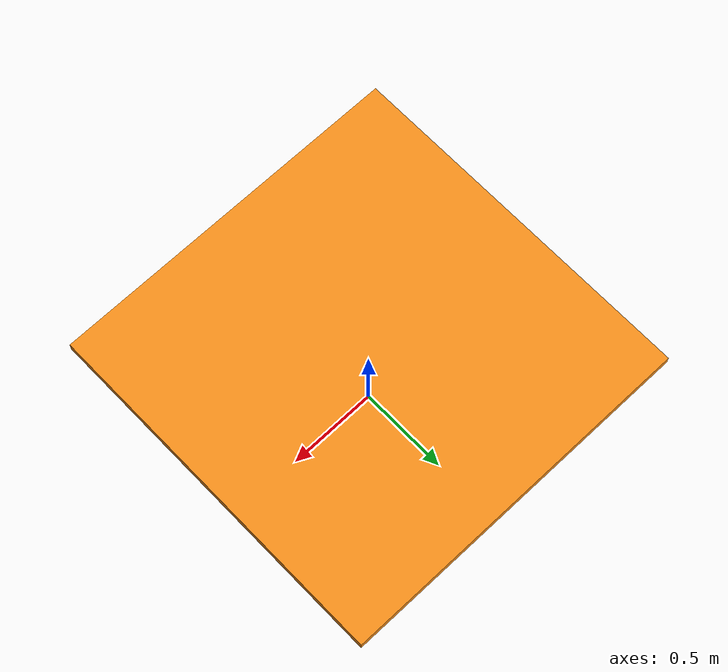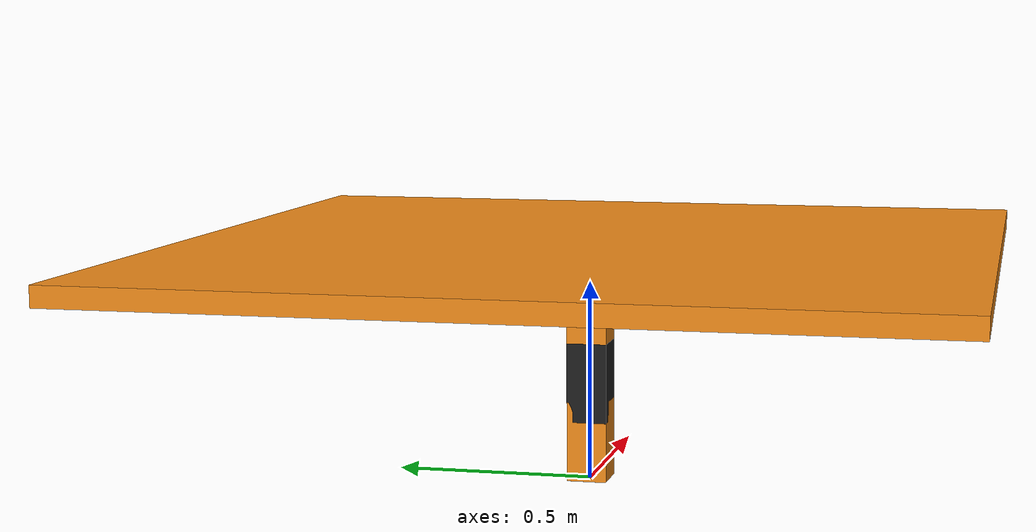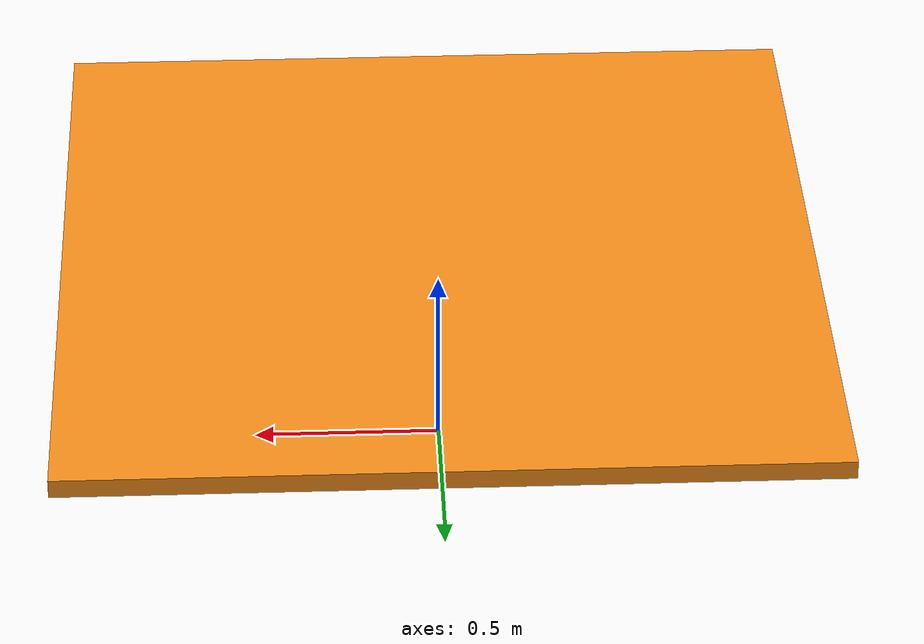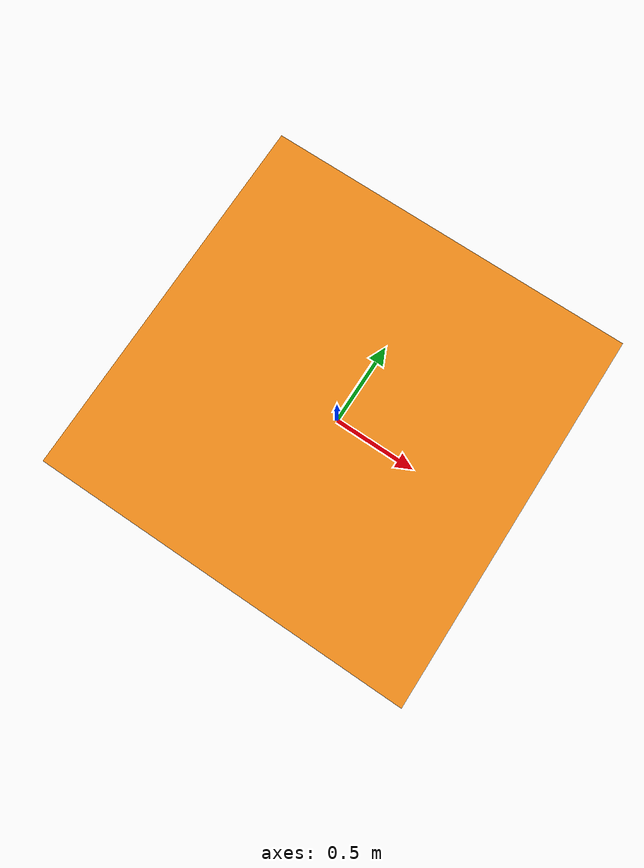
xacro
<?xml version="1.0"?>
<!-- Revolute-Revolute Manipulator -->
<robot name="floor" xmlns:xacro="http://www.ros.org/wiki/xacro">

  <!-- Constants for robot dimensions -->
  <xacro:property name="PI" value="3.1415926535897931"/>
  <xacro:property name="mass" value="1" /> <!-- arbitrary value for mass -->
  <xacro:property name="width" value="0.1" /> <!-- Square dimensions (widthxwidth) of beams -->
  <xacro:property name="height1" value="0.2" /> <!-- Link 1 0.5-->
  <xacro:property name="height2" value="0.2" /> <!-- Link 2 0.3-->
  <xacro:property name="height3" value="0.2" /> <!-- Link 3 0.3-->
  <xacro:property name="height4" value="0.05" /> <!-- Link 4 -->
  <xacro:property name="width4" value="2" /> <!-- Link 4 -->
  <xacro:property name="limit_joint" value="0.52" /> <!-- Limit joint-->
  <xacro:property name="camera_link" value="0.05" /> <!-- Size of square 'camera' box -->
  <xacro:property name="axel_offset" value="0.05" /> <!-- Space btw top of beam and the each joint -->

  <!-- Import all Gazebo-customization elements, including Gazebo colors -->
  <xacro:include filename="$(find floor_description)/urdf/floor.gazebo" />
  <!-- Import Rviz colors -->
  <xacro:include filename="$(find floor_description)/urdf/floor_materials.xacro" />

  <!-- Used for fixing robot to Gazebo 'base_link' -->
  <link name="world"/>

  <joint name="fixed" type="fixed">
    <parent link="world"/>
    <child link="link1"/>
  </joint>

  <!-- Base Link -->
  <link name="link1">
    <collision>
      <origin xyz="0 0 ${height1/2}" rpy="0 0 0"/>
      <geometry>
	      <box size="${width} ${width} ${height1}"/>
      </geometry>
    </collision>

    <visual>
      <origin xyz="0 0 ${height1/2}" rpy="0 0 0"/>
      <geometry>
	      <box size="${width} ${width} ${height1}"/>
      </geometry>
      <material name="orange"/>
    </visual>

    <inertial>
      <origin xyz="0 0 ${height1/2}" rpy="0 0 0"/>
      <mass value="${mass}"/>
      <inertia
        ixx="${mass / 12.0 * (width*width + height1*height1)}" ixy="0.0" ixz="0.0"
        iyy="${mass / 12.0 * (height1*height1 + width*width)}" iyz="0.0"
        izz="${mass / 12.0 * (width*width + width*width)}"/>
    </inertial>
  </link>

  <joint name="joint1" type="revolute">
    <parent link="link1"/>
    <child link="link2"/>
    <origin xyz="0 0 ${height1}" rpy="0 0 0"/>
    <limit effort="1000" lower="-${limit_joint}" upper="${limit_joint}" velocity="1.5" />
    <axis xyz="0 1 0"/>
    <dynamics damping="0.7"/>
  </joint>

  <!-- Middle Link -->
  <link name="link2">
    <collision>
      <origin xyz="0 0 ${height2/2 - axel_offset}" rpy="0 0 0"/>
      <geometry>
	      <box size="${width} ${width} ${height2}"/>
      </geometry>
    </collision>

    <visual>
      <origin xyz="0 0 ${height2/2 - axel_offset}" rpy="0 0 0"/>
      <geometry>
      	<box size="${width} ${width} ${height2}"/>
      </geometry>
      <material name="black"/>
    </visual>

    <inertial>
      <origin xyz="0 0 ${height2/2 - axel_offset}" rpy="0 0 0"/>
      <mass value="${mass}"/>
      <inertia
        ixx="${mass / 12.0 * (width*width + height2*height2)}" ixy="0.0" ixz="0.0"
        iyy="${mass / 12.0 * (height2*height2 + width*width)}" iyz="0.0"
        izz="${mass / 12.0 * (width*width + width*width)}"/>
    </inertial>
  </link>

  <joint name="joint2" type="revolute">
    <parent link="link2"/>
    <child link="link3"/>
    <origin xyz="0 0 ${height2}" rpy="0 0 0"/>
    <limit effort="1000" lower="-${limit_joint}" upper="${limit_joint}" velocity="1.5" />
    <axis xyz="1 0 0"/>
    <dynamics damping="0.7"/>
  </joint>

  <!-- Top Link -->
  <link name="link3">
    <collision>
      <origin xyz="0 0 ${height3/2 - axel_offset}" rpy="0 0 0"/>
      <geometry>
      	<box size="${width} ${width} ${height3}"/>
      </geometry>
    </collision>

    <visual>
      <origin xyz="0 0 ${height3/2 - axel_offset}" rpy="0 0 0"/>
      <geometry>
	      <box size="${width} ${width} ${height3}"/>
      </geometry>
      <material name="orange"/>
    </visual>

    <inertial>
      <origin xyz="0 0 ${height3/2 - axel_offset}" rpy="0 0 0"/>
      <mass value="${mass}"/>
      <inertia
        ixx="${mass / 12.0 * (width*width + height3*height3)}" ixy="0.0" ixz="0.0"
        iyy="${mass / 12.0 * (height3*height3 + width*width)}" iyz="0.0"
        izz="${mass / 12.0 * (width*width + width*width)}"/>
    </inertial>
  </link>

  <joint name="fixed_base" type="fixed">
    <parent link="link3"/>
    <child link="link4"/>
    <origin xyz="0 0 ${height3}" rpy="0 0 0"/>
  </joint>

    <!-- Base Link -->
  <link name="link4">
    <collision>
      <origin xyz="0 0 ${height4/2 - axel_offset}" rpy="0 0 0"/>
      <geometry>
	      <box size="${width4} ${width4} ${height4}"/>
      </geometry>
    </collision>

    <visual>
      <origin xyz="0 0 ${height4/2 - axel_offset}" rpy="0 0 0"/>
      <geometry>
	      <box size="${width4} ${width4} ${height4}"/>
      </geometry>
      <material name="orange"/>
    </visual>

    <inertial>
      <origin xyz="0 0 ${height4/2 - axel_offset}" rpy="0 0 0"/>
      <mass value="${mass}"/>
      <inertia
        ixx="${mass / 12.0 * (width4*width4 + height4*height4)}" ixy="0.0" ixz="0.0"
        iyy="${mass / 12.0 * (height4*height4 + width4*width4)}" iyz="0.0"
        izz="${mass / 12.0 * (width4*width4 + width4*width4)}"/>
    </inertial>
  </link>

  <gazebo reference="link4">
    <kp>1000000.0</kp>
    <kd>1.0</kd>
    <mu1>0.9</mu1>
    <mu2>0.9</mu2>
    <maxVel>0.0</maxVel>
    <minDepth>0.001</minDepth>
    <material>Gazebo/Orange</material>
  </gazebo>

  <link name="imu_link">
    <inertial>
      <mass value="0.001"/>
      <origin xyz="0 0 0" rpy="0 0 0"/>
      <inertia ixx="1e-09" ixy="0.0" ixz="0.0" iyy="1e-09" iyz="0.0" izz="1e-09"/>
    </inertial>
  </link>

  <joint name="imu_joint" type="fixed">
    <parent link="link4" />
    <child link="imu_link" />
    <origin xyz="0 0 ${height4}" rpy="0 0 0"/>
  </joint>

  <transmission name="tran1">
    <type>transmission_interface/SimpleTransmission</type>
    <joint name="joint1">
      <hardwareInterface>hardware_interface/EffortJointInterface</hardwareInterface>
    </joint>
    <actuator name="motor1">
      <hardwareInterface>hardware_interface/EffortJointInterface</hardwareInterface>
      <mechanicalReduction>1</mechanicalReduction>
    </actuator>
  </transmission>

  <transmission name="tran2">
    <type>transmission_interface/SimpleTransmission</type>
    <joint name="joint2">
      <hardwareInterface>hardware_interface/EffortJointInterface</hardwareInterface>
    </joint>
    <actuator name="motor2">
      <hardwareInterface>hardware_interface/EffortJointInterface</hardwareInterface>
      <mechanicalReduction>1</mechanicalReduction>
    </actuator>
  </transmission>

</robot>
